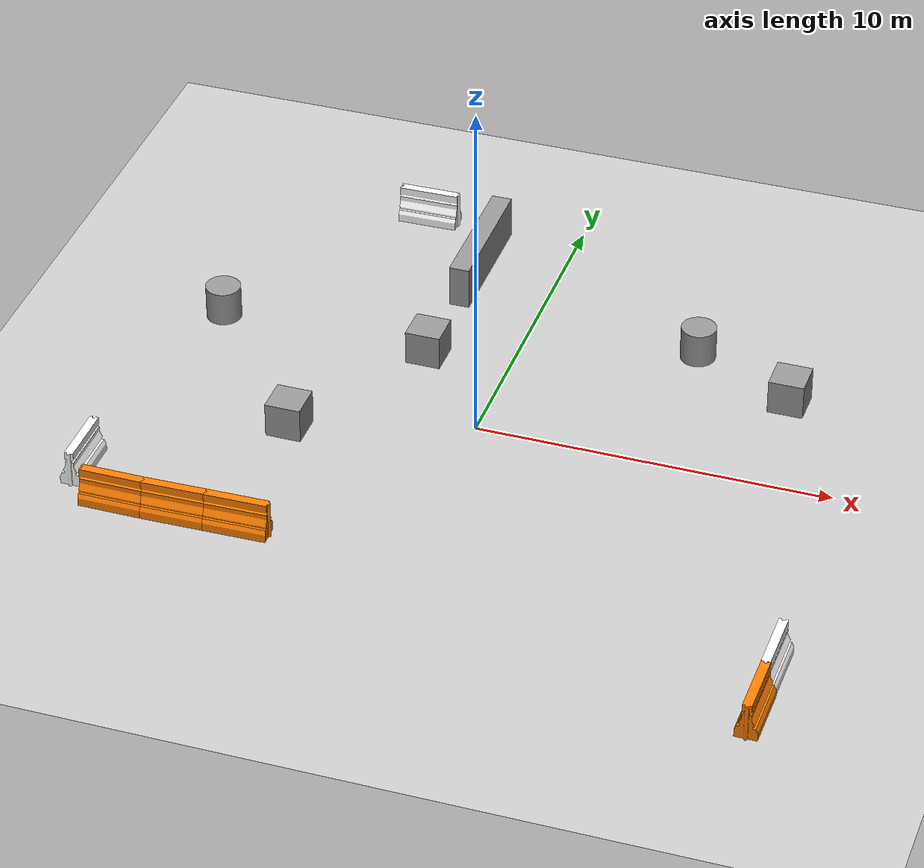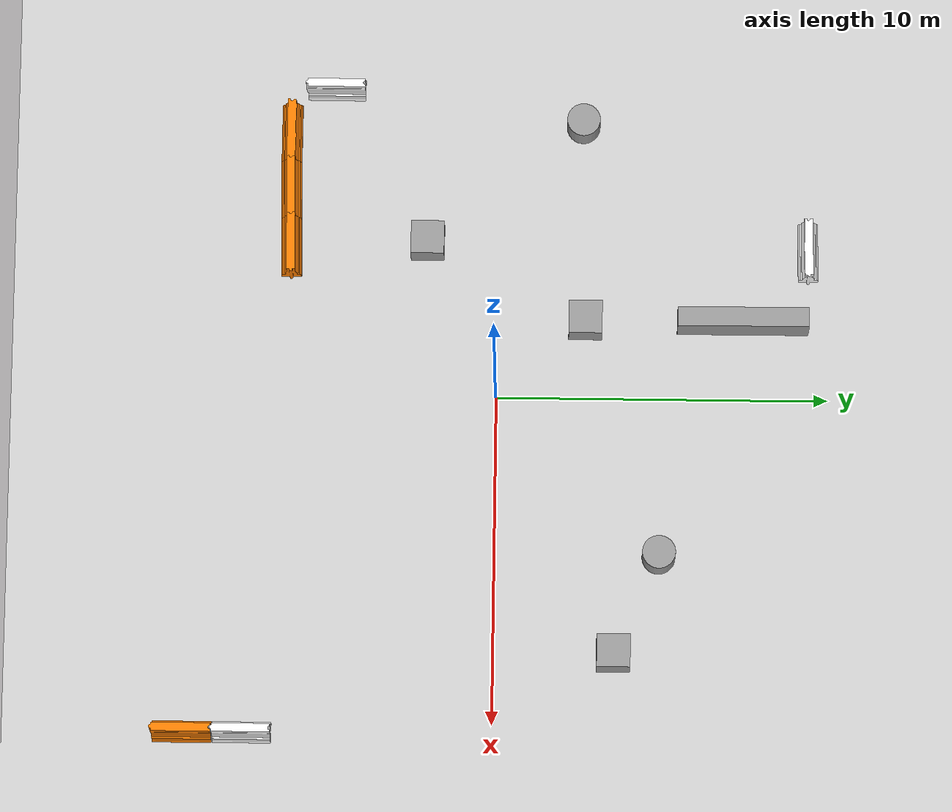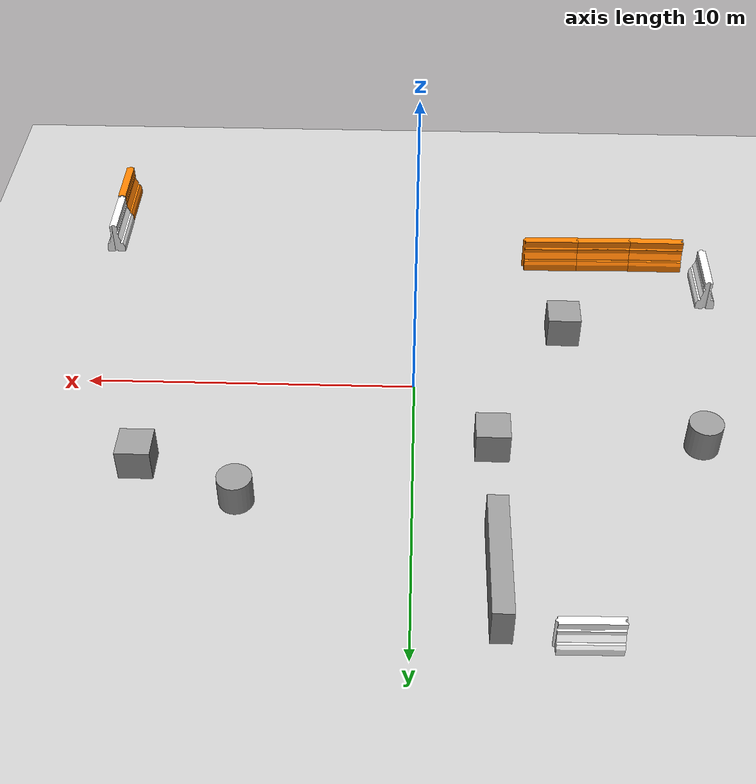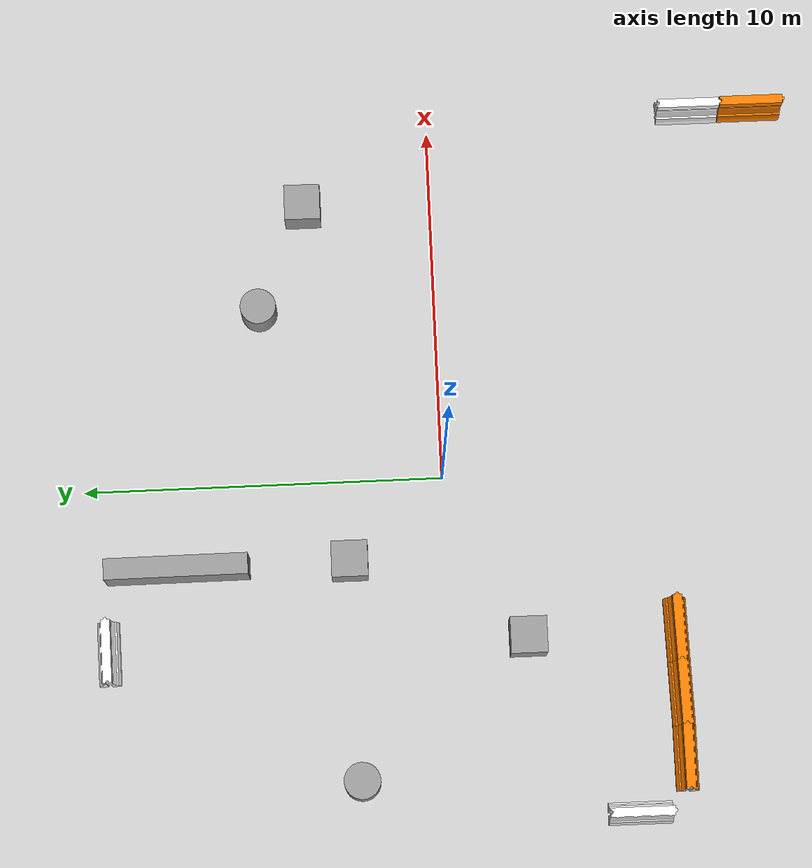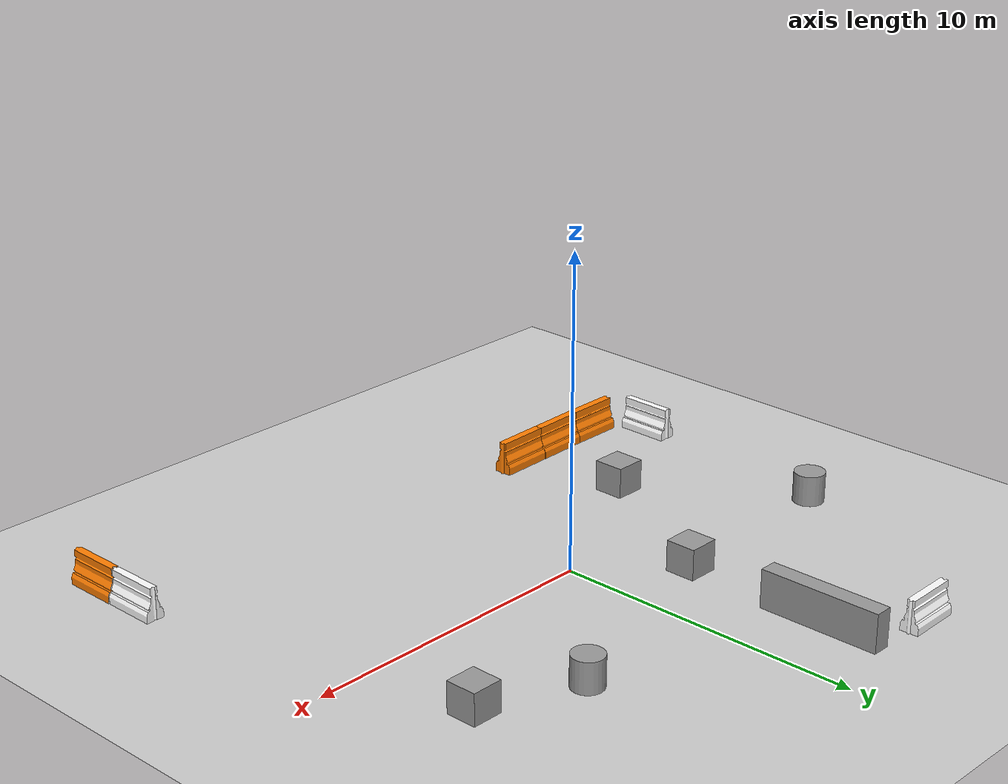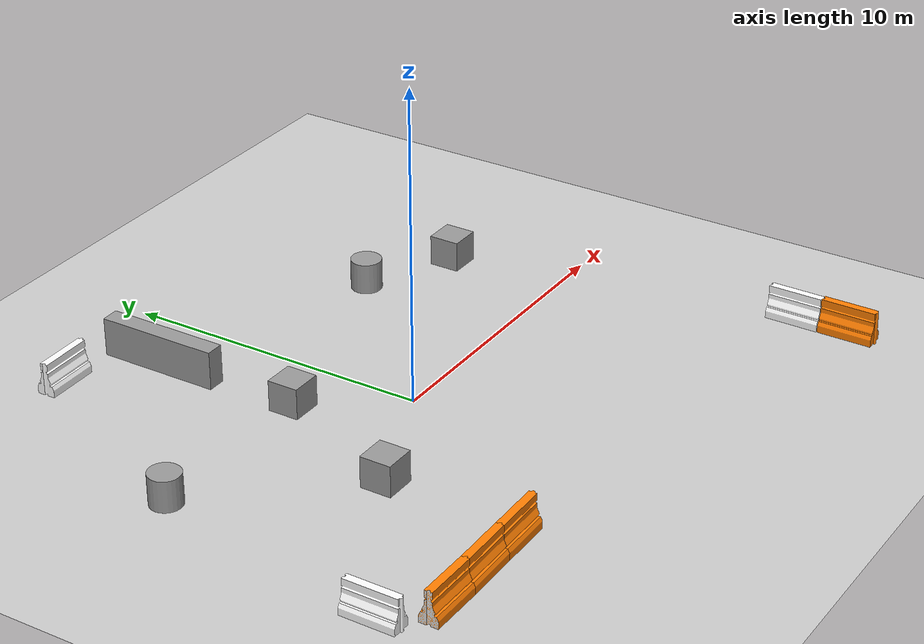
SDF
<sdf version="1.6">
 <world name="default">
  <light name="sun" type="directional">
   <pose>0 0 10 0 -0 0</pose>
   <diffuse>0.8 0.8 0.8 1</diffuse>
   <specular>0.2 0.2 0.2 1</specular>
   <attenuation>
    <range>1000</range>
    <constant>0.9</constant>
    <linear>0.01</linear>
    <quadratic>0.001</quadratic>
   </attenuation>
   <direction>-0.5 0.1 -0.9</direction>
  </light>
  <model name="ground_plane">
   <static>1</static>
   <link name="link">
    <collision name="collision">
     <geometry><plane><normal>0 0 1</normal><size>100 100</size></plane></geometry>
     <surface><friction><ode><mu>100</mu><mu2>50</mu2></ode></friction></surface>
    </collision>
    <visual name="visual">
     <cast_shadows>0</cast_shadows>
     <geometry><plane><normal>0 0 1</normal><size>100 100</size></plane></geometry>
     <material>
      <script><uri>file://media/materials/scripts/gazebo.material</uri><name>Gazebo/Grey</name></script>
     </material>
    </visual>
    <velocity_decay><linear>0</linear><angular>0</angular></velocity_decay>
   </link>
  </model>
  <physics name="default_physics" default="0" type="ode">
   <max_step_size>0.001</max_step_size>
   <real_time_factor>1</real_time_factor>
   <real_time_update_rate>1000</real_time_update_rate>
  </physics>
  <scene><ambient>0.4 0.4 0.4 1</ambient><background>0.7 0.7 0.7 1</background><shadows>1</shadows></scene>
  <spherical_coordinates>
   <surface_model>EARTH_WGS84</surface_model>
   <latitude_deg>0</latitude_deg>
   <longitude_deg>0</longitude_deg>
   <elevation>0</elevation>
   <heading_deg>0</heading_deg>
  </spherical_coordinates>
  <model name="drc_practice_organge_jersey_barrier">
   <static>1</static>
   <link name="link">
    <visual name="visual">
     <geometry>
      <mesh><uri>model://drc_practice_orange_jersey_barrier/meshes/jersey_barrier.dae</uri></mesh>
     </geometry>
    </visual>
    <collision name="collision">
     <geometry>
      <mesh><uri>model://drc_practice_orange_jersey_barrier/meshes/jersey_barrier.dae</uri></mesh>
     </geometry>
    </collision>
    <velocity_decay><linear>0</linear><angular>0</angular></velocity_decay>
   </link>
   <pose>-4.54889 -6.23392 0 0 -0 1.59364</pose>
  </model>
  <model name="drc_practice_white_jersey_barrier">
   <static>1</static>
   <link name="link">
    <visual name="visual">
     <geometry>
      <mesh><uri>model://drc_practice_white_jersey_barrier/meshes/jersey_barrier.dae</uri></mesh>
     </geometry>
    </visual>
    <collision name="collision">
     <geometry>
      <mesh><uri>model://drc_practice_white_jersey_barrier/meshes/jersey_barrier.dae</uri></mesh>
     </geometry>
    </collision>
    <velocity_decay><linear>0</linear><angular>0</angular></velocity_decay>
   </link>
   <pose>-9.48699 -4.9367 0 0 -0 0</pose>
  </model>
  <model name="drc_practice_organge_jersey_barrier_0">
   <static>1</static>
   <link name="link">
    <visual name="visual">
     <geometry>
      <mesh><uri>model://drc_practice_orange_jersey_barrier/meshes/jersey_barrier.dae</uri></mesh>
     </geometry>
    </visual>
    <collision name="collision">
     <geometry>
      <mesh><uri>model://drc_practice_orange_jersey_barrier/meshes/jersey_barrier.dae</uri></mesh>
     </geometry>
    </collision>
    <velocity_decay><linear>0</linear><angular>0</angular></velocity_decay>
   </link>
   <pose>-6.30934 -6.26351 0 0 -0 1.59467</pose>
  </model>
  <model name="drc_practice_organge_jersey_barrier_1">
   <static>1</static>
   <link name="link">
    <visual name="visual">
     <geometry>
      <mesh><uri>model://drc_practice_orange_jersey_barrier/meshes/jersey_barrier.dae</uri></mesh>
     </geometry>
    </visual>
    <collision name="collision">
     <geometry>
      <mesh><uri>model://drc_practice_orange_jersey_barrier/meshes/jersey_barrier.dae</uri></mesh>
     </geometry>
    </collision>
    <velocity_decay><linear>0</linear><angular>0</angular></velocity_decay>
   </link>
   <pose>-8.06556 -6.2736 0 0 -0 1.57109</pose>
  </model>
  <model name="drc_practice_white_jersey_barrier_0">
   <static>1</static>
   <link name="link">
    <visual name="visual">
     <geometry>
      <mesh><uri>model://drc_practice_white_jersey_barrier/meshes/jersey_barrier.dae</uri></mesh>
     </geometry>
    </visual>
    <collision name="collision">
     <geometry>
      <mesh><uri>model://drc_practice_white_jersey_barrier/meshes/jersey_barrier.dae</uri></mesh>
     </geometry>
    </collision>
    <velocity_decay><linear>0</linear><angular>0</angular></velocity_decay>
   </link>
   <pose>10.3176 -7.4365 0 0 -0 0</pose>
  </model>
  <model name="drc_practice_white_jersey_barrier_1">
   <static>1</static>
   <link name="link">
    <visual name="visual">
     <geometry>
      <mesh><uri>model://drc_practice_white_jersey_barrier/meshes/jersey_barrier.dae</uri></mesh>
     </geometry>
    </visual>
    <collision name="collision">
     <geometry>
      <mesh><uri>model://drc_practice_white_jersey_barrier/meshes/jersey_barrier.dae</uri></mesh>
     </geometry>
    </collision>
    <velocity_decay><linear>0</linear><angular>0</angular></velocity_decay>
   </link>
   <pose>-4.54271 9.38577 0 0 -0 1.59123</pose>
  </model>
  <model name="drc_practice_organge_jersey_barrier_2">
   <static>1</static>
   <link name="link">
    <visual name="visual">
     <geometry>
      <mesh><uri>model://drc_practice_orange_jersey_barrier/meshes/jersey_barrier.dae</uri></mesh>
     </geometry>
    </visual>
    <collision name="collision">
     <geometry>
      <mesh><uri>model://drc_practice_orange_jersey_barrier/meshes/jersey_barrier.dae</uri></mesh>
     </geometry>
    </collision>
    <velocity_decay><linear>0</linear><angular>0</angular></velocity_decay>
   </link>
   <pose>10.3218 -9.21435 0 0 -0 0</pose>
  </model>
  <gravity>0 0 -9.8</gravity>
  <magnetic_field>6e-06 2.3e-05 -4.2e-05</magnetic_field>
  <atmosphere type="adiabatic"/>
  <audio><device>default</device></audio>
  <model name="unit_box">
   <pose>-4.62673 -2.10426 0.922545 -0 6e-06 -0.00428</pose>
   <link name="link">
    <inertial>
     <mass>1</mass>
     <inertia>
      <ixx>0.166667</ixx>
      <ixy>0</ixy>
      <ixz>0</ixz>
      <iyy>0.166667</iyy>
      <iyz>0</iyz>
      <izz>0.166667</izz>
     </inertia>
    </inertial>
    <collision name="collision"><geometry><box><size>1 0.999999 1</size></box></geometry></collision>
    <visual name="visual">
     <geometry><box><size>1 0.999999 1</size></box></geometry>
     <material>
      <script><name>Gazebo/Grey</name><uri>file://media/materials/scripts/gazebo.material</uri></script>
     </material>
    </visual>
   </link>
  </model>
  <model name="unit_cylinder">
   <pose>-8.35455 2.56356 0.768971 0 -0 1e-06</pose>
   <link name="link">
    <inertial>
     <mass>1</mass>
     <inertia><ixx>0.145833</ixx><ixy>0</ixy><ixz>0</ixz><iyy>0.145833</iyy><iyz>0</iyz><izz>0.125</izz></inertia>
    </inertial>
    <collision name="collision">
     <geometry><cylinder><radius>0.5</radius><length>1</length></cylinder></geometry>
    </collision>
    <visual name="visual">
     <geometry><cylinder><radius>0.5</radius><length>1</length></cylinder></geometry>
     <material>
      <script><name>Gazebo/Grey</name><uri>file://media/materials/scripts/gazebo.material</uri></script>
     </material>
    </visual>
   </link>
  </model>
  <model name="unit_box_0">
   <pose>-2.29271 2.67573 0.622659 0.000297 1e-06 -0.00307</pose>
   <link name="link">
    <inertial>
     <mass>1</mass>
     <inertia>
      <ixx>0.166667</ixx>
      <ixy>0</ixy>
      <ixz>0</ixz>
      <iyy>0.166667</iyy>
      <iyz>0</iyz>
      <izz>0.166667</izz>
     </inertia>
    </inertial>
    <collision name="collision"><geometry><box><size>1 1 1</size></box></geometry></collision>
    <visual name="visual">
     <geometry><box><size>1 1 1</size></box></geometry>
     <material>
      <script><name>Gazebo/Grey</name><uri>file://media/materials/scripts/gazebo.material</uri></script>
     </material>
    </visual>
   </link>
  </model>
  <model name="unit_box_0_clone">
   <pose>-2.3165 7.42465 0.623026 -0.000134 0 0.001988</pose>
   <link name="link">
    <inertial>
     <mass>1</mass>
     <inertia>
      <ixx>0.166667</ixx>
      <ixy>0</ixy>
      <ixz>0</ixz>
      <iyy>0.166667</iyy>
      <iyz>0</iyz>
      <izz>0.166667</izz>
     </inertia>
    </inertial>
    <collision name="collision"><geometry><box><size>0.584822 3.94953 1.24649</size></box></geometry></collision>
    <visual name="visual">
     <geometry><box><size>0.584822 3.94953 1.24649</size></box></geometry>
     <material>
      <script><name>Gazebo/Grey</name><uri>file://media/materials/scripts/gazebo.material</uri></script>
     </material>
    </visual>
   </link>
  </model>
  <model name="unit_cylinder_0">
   <pose>4.88994 4.93811 0.669148 -0 -0 -0</pose>
   <link name="link">
    <inertial>
     <mass>1</mass>
     <inertia><ixx>0.145833</ixx><ixy>0</ixy><ixz>0</ixz><iyy>0.145833</iyy><iyz>0</iyz><izz>0.125</izz></inertia>
    </inertial>
    <collision name="collision">
     <geometry><cylinder><radius>0.5</radius><length>1</length></cylinder></geometry>
    </collision>
    <visual name="visual">
     <geometry><cylinder><radius>0.5</radius><length>1</length></cylinder></geometry>
     <material>
      <script><name>Gazebo/Grey</name><uri>file://media/materials/scripts/gazebo.material</uri></script>
     </material>
    </visual>
   </link>
  </model>
  <model name="unit_box_1">
   <pose>7.86632 3.60636 0.598953 2e-06 -0.000129 -0.002723</pose>
   <link name="link">
    <inertial>
     <mass>1</mass>
     <inertia>
      <ixx>0.166667</ixx>
      <ixy>0</ixy>
      <ixz>0</ixz>
      <iyy>0.166667</iyy>
      <iyz>0</iyz>
      <izz>0.166667</izz>
     </inertia>
    </inertial>
    <collision name="collision"><geometry><box><size>0.999997 1 1</size></box></geometry></collision>
    <visual name="visual">
     <geometry><box><size>0.999997 1 1</size></box></geometry>
     <material>
      <script><name>Gazebo/Grey</name><uri>file://media/materials/scripts/gazebo.material</uri></script>
     </material>
    </visual>
   </link>
  </model>
 </world>
</sdf>
